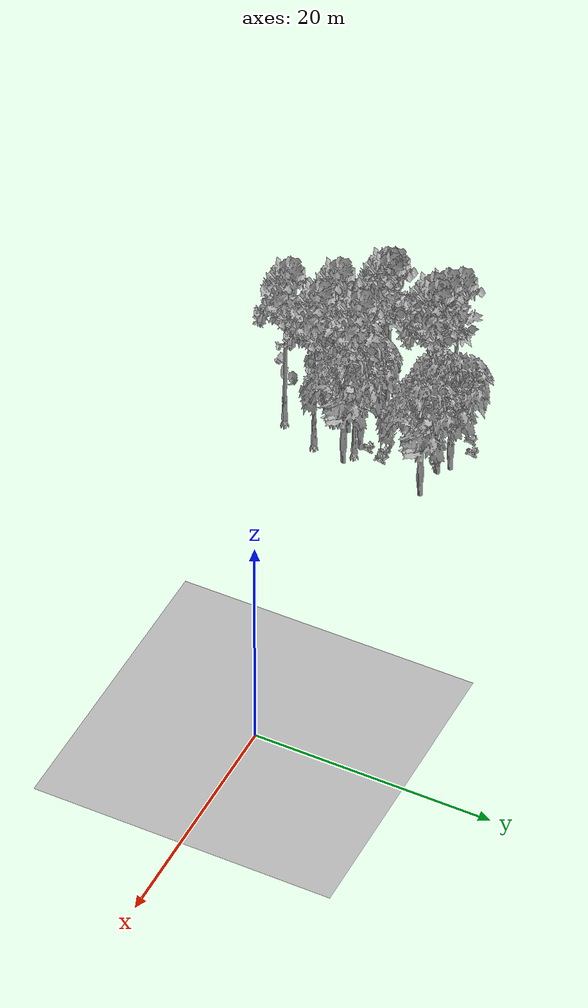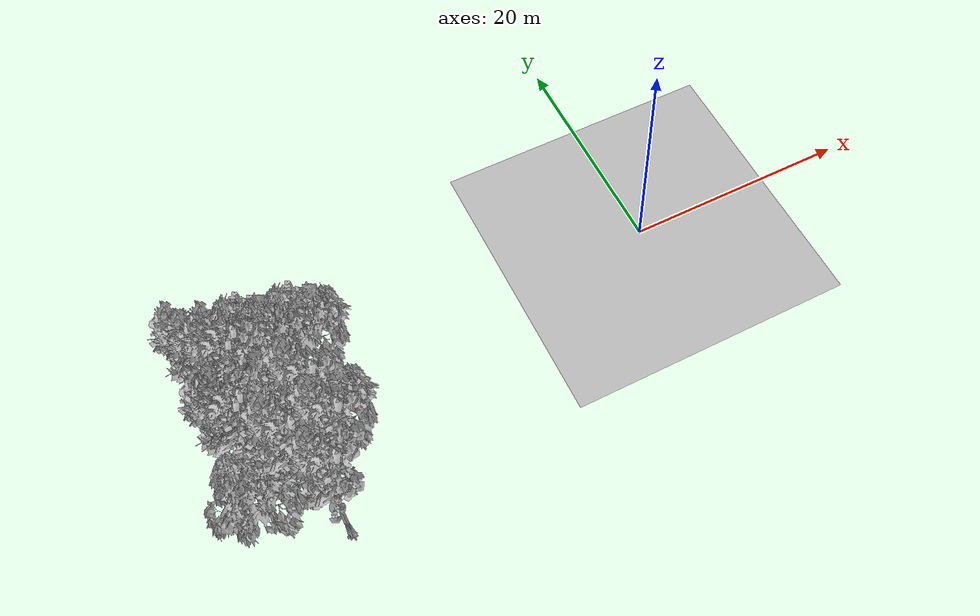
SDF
<sdf version="1.7">
 <world name="default">
  <model name="ground_plane">
   <static>1</static>
   <link name="link">
    <collision name="collision">
     <pose>-50 0 0 0 -0 0</pose>
     <geometry><plane><normal>0 0 1</normal><size>80 80</size></plane></geometry>
     <surface><contact><ode><min_depth>0.01</min_depth><max_vel>0</max_vel></ode></contact></surface>
    </collision>
    <visual name="grass">
     <cast_shadows>0</cast_shadows>
     <geometry>
      <mesh>
       <scale>0.46714285714285714 0.46714285714285714 0.1</scale>
       <uri>file://grass_plane/meshes/grass_plane.dae</uri>
      </mesh>
     </geometry>
    </visual>
   </link>
  </model>
  <model name="Tree 4">
   <static>1</static>
   <pose>-31.437596550301684 -10.574434964813708 0 1.57079 -0 0</pose>
   <link name="link">
    <collision name="collision">
     <geometry><mesh><scale>3.5 5 3.5</scale><uri>model://tree_9/meshes/tree_9.obj</uri></mesh></geometry>
    </collision>
    <visual name="visual">
     <geometry><mesh><scale>3.5 5 3.5</scale><uri>model://tree_9/meshes/tree_9.obj</uri></mesh></geometry>
    </visual>
   </link>
  </model>
  <model name="Tree 64">
   <static>1</static>
   <pose>-37.24406371817309 -2.0648817549293597 0 1.57079 -0 0</pose>
   <link name="link">
    <collision name="collision">
     <geometry><mesh><scale>3.5 5 3.5</scale><uri>model://tree_9/meshes/tree_9.obj</uri></mesh></geometry>
    </collision>
    <visual name="visual">
     <geometry><mesh><scale>3.5 5 3.5</scale><uri>model://tree_9/meshes/tree_9.obj</uri></mesh></geometry>
    </visual>
   </link>
  </model>
  <model name="Tree 85">
   <static>1</static>
   <pose>-30.615098450250507 -7.496841439096535 0 1.57079 -0 0</pose>
   <link name="link">
    <collision name="collision">
     <geometry><mesh><scale>3.5 5 3.5</scale><uri>model://tree_2/meshes/tree_2.obj</uri></mesh></geometry>
    </collision>
    <visual name="visual">
     <geometry><mesh><scale>3.5 5 3.5</scale><uri>model://tree_2/meshes/tree_2.obj</uri></mesh></geometry>
    </visual>
   </link>
  </model>
  <model name="Tree 204">
   <static>1</static>
   <pose>-37.38983187981214 -7.511212058450447 0 1.57079 -0 0</pose>
   <link name="link">
    <collision name="collision">
     <geometry><mesh><scale>3.5 5 3.5</scale><uri>model://tree_9/meshes/tree_9.obj</uri></mesh></geometry>
    </collision>
    <visual name="visual">
     <geometry><mesh><scale>3.5 5 3.5</scale><uri>model://tree_9/meshes/tree_9.obj</uri></mesh></geometry>
    </visual>
   </link>
  </model>
  <model name="Tree 225">
   <static>1</static>
   <pose>-32.70525427042635 -6.968906784418877 0 1.57079 -0 0</pose>
   <link name="link">
    <collision name="collision">
     <geometry><mesh><scale>3.5 5 3.5</scale><uri>model://tree_2/meshes/tree_2.obj</uri></mesh></geometry>
    </collision>
    <visual name="visual">
     <geometry><mesh><scale>3.5 5 3.5</scale><uri>model://tree_2/meshes/tree_2.obj</uri></mesh></geometry>
    </visual>
   </link>
  </model>
  <model name="Tree 237">
   <static>1</static>
   <pose>-37.495490424676206 -11.362691331722921 0 1.57079 -0 0</pose>
   <link name="link">
    <collision name="collision">
     <geometry><mesh><scale>3.5 5 3.5</scale><uri>model://tree_2/meshes/tree_2.obj</uri></mesh></geometry>
    </collision>
    <visual name="visual">
     <geometry><mesh><scale>3.5 5 3.5</scale><uri>model://tree_2/meshes/tree_2.obj</uri></mesh></geometry>
    </visual>
   </link>
  </model>
  <model name="Tree 273">
   <static>1</static>
   <pose>-31.931038988450542 -7.178722855834209 0 1.57079 -0 0</pose>
   <link name="link">
    <collision name="collision">
     <geometry><mesh><scale>3.5 5 3.5</scale><uri>model://tree_9/meshes/tree_9.obj</uri></mesh></geometry>
    </collision>
    <visual name="visual">
     <geometry><mesh><scale>3.5 5 3.5</scale><uri>model://tree_9/meshes/tree_9.obj</uri></mesh></geometry>
    </visual>
   </link>
  </model>
  <model name="Tree 323">
   <static>1</static>
   <pose>-35.763129495302366 -2.1840979660444475 0 1.57079 -0 0</pose>
   <link name="link">
    <collision name="collision">
     <geometry><mesh><scale>3.5 5 3.5</scale><uri>model://tree_9/meshes/tree_9.obj</uri></mesh></geometry>
    </collision>
    <visual name="visual">
     <geometry><mesh><scale>3.5 5 3.5</scale><uri>model://tree_9/meshes/tree_9.obj</uri></mesh></geometry>
    </visual>
   </link>
  </model>
  <model name="Tree 345">
   <static>1</static>
   <pose>-32.87958706261688 -0.1569739471363789 0 1.57079 -0 0</pose>
   <link name="link">
    <collision name="collision">
     <geometry><mesh><scale>3.5 5 3.5</scale><uri>model://tree_2/meshes/tree_2.obj</uri></mesh></geometry>
    </collision>
    <visual name="visual">
     <geometry><mesh><scale>3.5 5 3.5</scale><uri>model://tree_2/meshes/tree_2.obj</uri></mesh></geometry>
    </visual>
   </link>
  </model>
  <model name="Tree 403">
   <static>1</static>
   <pose>-36.95302922203406 -7.026894305672052 0 1.57079 -0 0</pose>
   <link name="link">
    <collision name="collision">
     <geometry><mesh><scale>3.5 5 3.5</scale><uri>model://tree_9/meshes/tree_9.obj</uri></mesh></geometry>
    </collision>
    <visual name="visual">
     <geometry><mesh><scale>3.5 5 3.5</scale><uri>model://tree_9/meshes/tree_9.obj</uri></mesh></geometry>
    </visual>
   </link>
  </model>
  <model name="Tree 463">
   <static>1</static>
   <pose>-34.05104540789605 -8.759356773005152 0 1.57079 -0 0</pose>
   <link name="link">
    <collision name="collision">
     <geometry><mesh><scale>3.5 5 3.5</scale><uri>model://tree_2/meshes/tree_2.obj</uri></mesh></geometry>
    </collision>
    <visual name="visual">
     <geometry><mesh><scale>3.5 5 3.5</scale><uri>model://tree_2/meshes/tree_2.obj</uri></mesh></geometry>
    </visual>
   </link>
  </model>
  <model name="Tree 485">
   <static>1</static>
   <pose>-36.37070004812279 -2.8733835733432755 0 1.57079 -0 0</pose>
   <link name="link">
    <collision name="collision">
     <geometry><mesh><scale>3.5 5 3.5</scale><uri>model://tree_9/meshes/tree_9.obj</uri></mesh></geometry>
    </collision>
    <visual name="visual">
     <geometry><mesh><scale>3.5 5 3.5</scale><uri>model://tree_9/meshes/tree_9.obj</uri></mesh></geometry>
    </visual>
   </link>
  </model>
  <model name="Tree 487">
   <static>1</static>
   <pose>-37.61368739732572 -6.946511126077837 0 1.57079 -0 0</pose>
   <link name="link">
    <collision name="collision">
     <geometry><mesh><scale>3.5 5 3.5</scale><uri>model://tree_9/meshes/tree_9.obj</uri></mesh></geometry>
    </collision>
    <visual name="visual">
     <geometry><mesh><scale>3.5 5 3.5</scale><uri>model://tree_9/meshes/tree_9.obj</uri></mesh></geometry>
    </visual>
   </link>
  </model>
  <model name="Tree 526">
   <static>1</static>
   <pose>-34.57231412262072 -10.354519401926645 0 1.57079 -0 0</pose>
   <link name="link">
    <collision name="collision">
     <geometry><mesh><scale>3.5 5 3.5</scale><uri>model://tree_9/meshes/tree_9.obj</uri></mesh></geometry>
    </collision>
    <visual name="visual">
     <geometry><mesh><scale>3.5 5 3.5</scale><uri>model://tree_9/meshes/tree_9.obj</uri></mesh></geometry>
    </visual>
   </link>
  </model>
  <model name="Tree 599">
   <static>1</static>
   <pose>-33.778219750447754 0.5787987825125924 0 1.57079 -0 0</pose>
   <link name="link">
    <collision name="collision">
     <geometry><mesh><scale>3.5 5 3.5</scale><uri>model://tree_2/meshes/tree_2.obj</uri></mesh></geometry>
    </collision>
    <visual name="visual">
     <geometry><mesh><scale>3.5 5 3.5</scale><uri>model://tree_2/meshes/tree_2.obj</uri></mesh></geometry>
    </visual>
   </link>
  </model>
  <model name="Tree 611">
   <static>1</static>
   <pose>-29.93439707939087 -0.2975799382963942 0 1.57079 -0 0</pose>
   <link name="link">
    <collision name="collision">
     <geometry><mesh><scale>3.5 5 3.5</scale><uri>model://tree_2/meshes/tree_2.obj</uri></mesh></geometry>
    </collision>
    <visual name="visual">
     <geometry><mesh><scale>3.5 5 3.5</scale><uri>model://tree_2/meshes/tree_2.obj</uri></mesh></geometry>
    </visual>
   </link>
  </model>
  <model name="Tree 614">
   <static>1</static>
   <pose>-32.84027249820008 -13.935676533232055 0 1.57079 -0 0</pose>
   <link name="link">
    <collision name="collision">
     <geometry><mesh><scale>3.5 5 3.5</scale><uri>model://tree_9/meshes/tree_9.obj</uri></mesh></geometry>
    </collision>
    <visual name="visual">
     <geometry><mesh><scale>3.5 5 3.5</scale><uri>model://tree_9/meshes/tree_9.obj</uri></mesh></geometry>
    </visual>
   </link>
  </model>
  <model name="Tree 623">
   <static>1</static>
   <pose>-37.87084363675947 -1.110616327806909 0 1.57079 -0 0</pose>
   <link name="link">
    <collision name="collision">
     <geometry><mesh><scale>3.5 5 3.5</scale><uri>model://tree_9/meshes/tree_9.obj</uri></mesh></geometry>
    </collision>
    <visual name="visual">
     <geometry><mesh><scale>3.5 5 3.5</scale><uri>model://tree_9/meshes/tree_9.obj</uri></mesh></geometry>
    </visual>
   </link>
  </model>
  <model name="Bush 39">
   <static>1</static>
   <pose>-33.016505886966954 -0.47331881427983546 0 1.57079 -0 0</pose>
   <link name="link">
    <collision name="collision">
     <geometry><mesh><scale>2 2 2</scale><uri>model://bush_4/meshes/bush_4.obj</uri></mesh></geometry>
     <surface><contact><collide_without_contact>false</collide_without_contact></contact></surface>
    </collision>
    <visual name="visual">
     <geometry><mesh><scale>2 2 2</scale><uri>model://bush_4/meshes/bush_4.obj</uri></mesh></geometry>
    </visual>
   </link>
  </model>
  <model name="Bush 238">
   <static>1</static>
   <pose>-37.553526976663896 0.6601595525436537 0 1.57079 -0 0</pose>
   <link name="link">
    <collision name="collision">
     <geometry><mesh><scale>2 2 2</scale><uri>model://bush_2/meshes/bush_2.obj</uri></mesh></geometry>
     <surface><contact><collide_without_contact>false</collide_without_contact></contact></surface>
    </collision>
    <visual name="visual">
     <geometry><mesh><scale>2 2 2</scale><uri>model://bush_2/meshes/bush_2.obj</uri></mesh></geometry>
    </visual>
   </link>
  </model>
  <model name="Bush 285">
   <static>1</static>
   <pose>-33.094742005897245 -5.024421779633784 0 1.57079 -0 0</pose>
   <link name="link">
    <collision name="collision">
     <geometry><mesh><scale>2 2 2</scale><uri>model://bush_2/meshes/bush_2.obj</uri></mesh></geometry>
     <surface><contact><collide_without_contact>false</collide_without_contact></contact></surface>
    </collision>
    <visual name="visual">
     <geometry><mesh><scale>2 2 2</scale><uri>model://bush_2/meshes/bush_2.obj</uri></mesh></geometry>
    </visual>
   </link>
  </model>
  <model name="Bush 382">
   <static>1</static>
   <pose>-32.30370388529676 -4.938247594907217 0 1.57079 -0 0</pose>
   <link name="link">
    <collision name="collision">
     <geometry><mesh><scale>2 2 2</scale><uri>model://bush_2/meshes/bush_2.obj</uri></mesh></geometry>
     <surface><contact><collide_without_contact>false</collide_without_contact></contact></surface>
    </collision>
    <visual name="visual">
     <geometry><mesh><scale>2 2 2</scale><uri>model://bush_2/meshes/bush_2.obj</uri></mesh></geometry>
    </visual>
   </link>
  </model>
  <model name="Bush 389">
   <static>1</static>
   <pose>-32.98653327199067 -6.4202984223137065 0 1.57079 -0 0</pose>
   <link name="link">
    <collision name="collision">
     <geometry><mesh><scale>2 2 2</scale><uri>model://bush_2/meshes/bush_2.obj</uri></mesh></geometry>
     <surface><contact><collide_without_contact>false</collide_without_contact></contact></surface>
    </collision>
    <visual name="visual">
     <geometry><mesh><scale>2 2 2</scale><uri>model://bush_2/meshes/bush_2.obj</uri></mesh></geometry>
    </visual>
   </link>
  </model>
  <model name="Bush 478">
   <static>1</static>
   <pose>-36.28391073551612 1.3736544304600145 0 1.57079 -0 0</pose>
   <link name="link">
    <collision name="collision">
     <geometry><mesh><scale>2 2 2</scale><uri>model://bush_2/meshes/bush_2.obj</uri></mesh></geometry>
     <surface><contact><collide_without_contact>false</collide_without_contact></contact></surface>
    </collision>
    <visual name="visual">
     <geometry><mesh><scale>2 2 2</scale><uri>model://bush_2/meshes/bush_2.obj</uri></mesh></geometry>
    </visual>
   </link>
  </model>
 </world>
</sdf>
